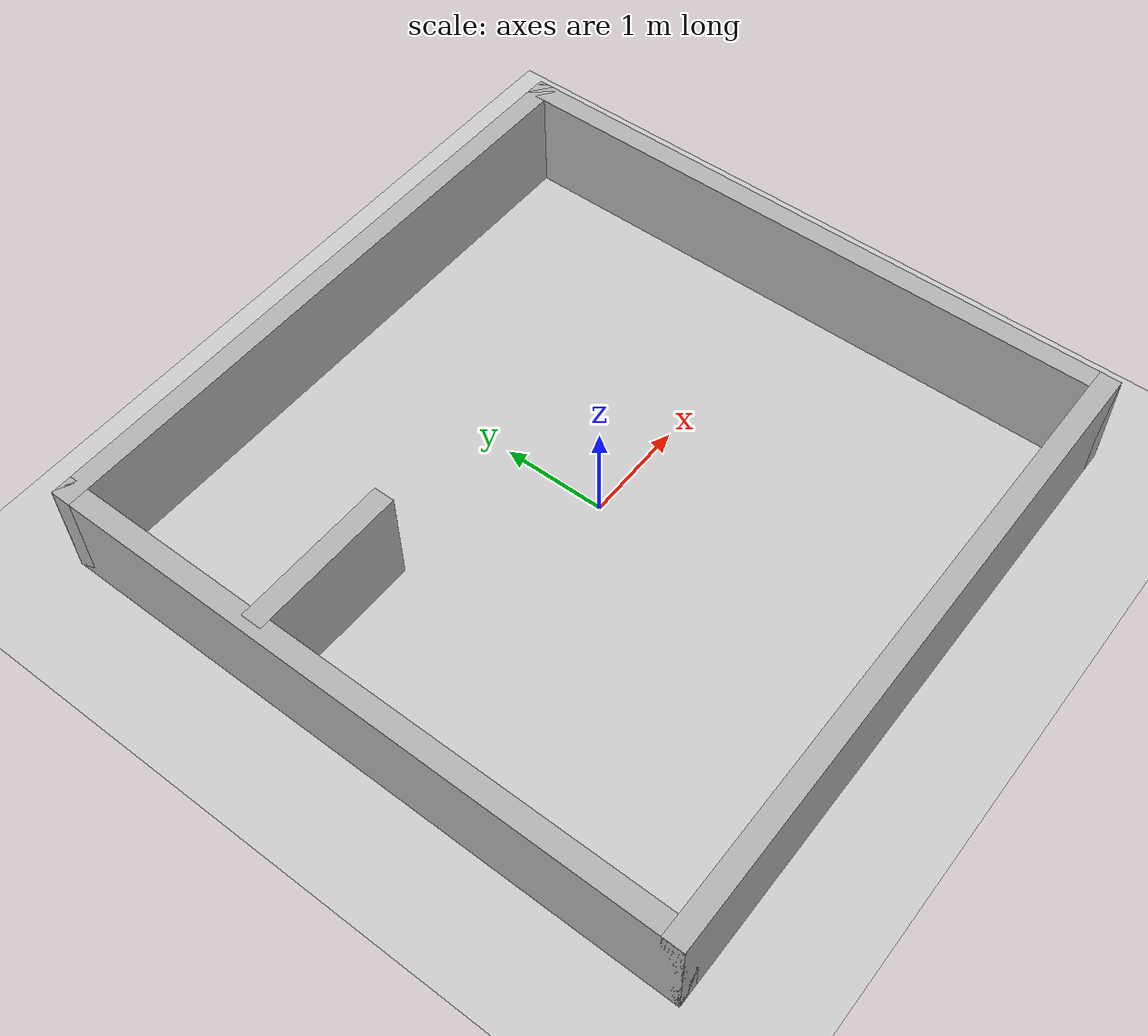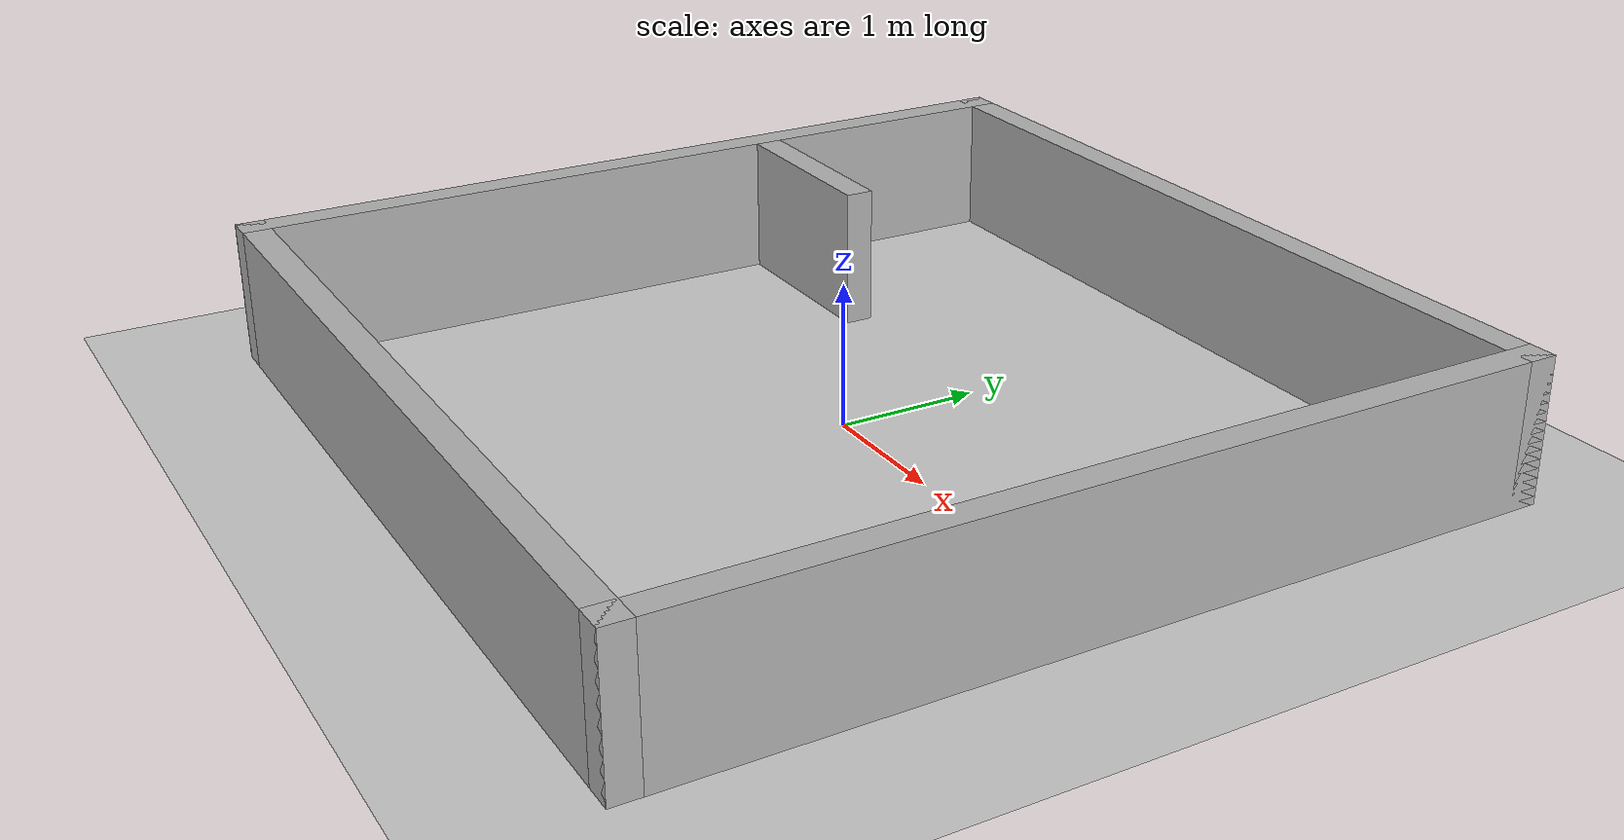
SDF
<?xml version="1.0" ?>
<sdf version="1.6">
  <world name="furbo_world">
    <physics name="1ms" type="ignored">
      <max_step_size>0.001</max_step_size>
      <real_time_factor>1.0</real_time_factor>
    </physics>
    <plugin filename="gz-sim-physics-system" name="gz::sim::systems::Physics"></plugin>
    <plugin filename="gz-sim-user-commands-system" name="gz::sim::systems::UserCommands"></plugin>
    <plugin filename="gz-sim-scene-broadcaster-system" name="gz::sim::systems::SceneBroadcaster"></plugin>
    <plugin filename="gz-sim-contact-system" name="gz::sim::systems::Contact"></plugin>
    <plugin filename="gz-sim-imu-system" name="gz::sim::systems::Imu"></plugin>
    <plugin filename="gz-sim-sensors-system" name="gz::sim::systems::Sensors">
      <render_engine>ogre2</render_engine>
    </plugin>

    <light type="directional" name="sun">
      <cast_shadows>true</cast_shadows>
      <pose>0 0 10 0 0 0</pose>
      <diffuse>0.8 0.8 0.8 1</diffuse>
      <specular>0.2 0.2 0.2 1</specular>
      <attenuation>
        <range>1000</range>
        <constant>0.9</constant>
        <linear>0.01</linear>
        <quadratic>0.001</quadratic>
      </attenuation>
      <direction>-0.5 0.1 -0.9</direction>
    </light>

    <model name="ground_plane">
      <static>true</static>
      <link name="link">
        <collision name="collision">
          <geometry><plane><normal>0 0 1</normal><size>100 100</size></plane></geometry>
        </collision>
        <visual name="visual">
          <geometry><plane><normal>0 0 1</normal><size>100 100</size></plane></geometry>
          <material>
            <ambient>0.8 0.8 0.8 1</ambient>
            <diffuse>0.8 0.8 0.8 1</diffuse>
            <specular>0.8 0.8 0.8 1</specular>
          </material>
        </visual>
      </link>
    </model>

    <model name="wall_north">
      <static>true</static>
      <pose>0 3 0.5 0 0 0</pose>
      <link name="link">
          <visual name="visual">
              <geometry><box><size>6.2 0.2 1</size></box></geometry>
              <material><ambient>0.7 0.7 0.7 1</ambient><diffuse>0.7 0.7 0.7 1</diffuse></material>
          </visual>
          <collision name="collision">
              <geometry><box><size>6.2 0.2 1</size></box></geometry>
          </collision>
      </link>
    </model>

    <model name="wall_south">
        <static>true</static>
        <pose>0 -3 0.5 0 0 0</pose>
        <link name="link">
            <visual name="visual">
                <geometry><box><size>6.2 0.2 1</size></box></geometry>
                <material><ambient>0.7 0.7 0.7 1</ambient><diffuse>0.7 0.7 0.7 1</diffuse></material>
            </visual>
            <collision name="collision">
                <geometry><box><size>6.2 0.2 1</size></box></geometry>
            </collision>
        </link>
    </model>

    <model name="wall_east">
        <static>true</static>
        <pose>3 0 0.5 0 0 0</pose>
        <link name="link">
            <visual name="visual">
                <geometry><box><size>0.2 6.2 1</size></box></geometry>
                <material><ambient>0.7 0.7 0.7 1</ambient><diffuse>0.7 0.7 0.7 1</diffuse></material>
            </visual>
            <collision name="collision">
                <geometry><box><size>0.2 6.2 1</size></box></geometry>
            </collision>
        </link>
    </model>

    <model name="wall_west">
        <static>true</static>
        <pose>-3 0 0.5 0 0 0</pose>
        <link name="link">
            <visual name="visual">
                <geometry><box><size>0.2 6.2 1</size></box></geometry>
                <material><ambient>0.7 0.7 0.7 1</ambient><diffuse>0.7 0.7 0.7 1</diffuse></material>
            </visual>
            <collision name="collision">
                <geometry><box><size>0.2 6.2 1</size></box></geometry>
            </collision>
        </link>
    </model>

    <model name="wall_divider">
        <static>true</static>
        <pose>-2.25 1 0.5 0 0 0</pose>
        <link name="link">
            <visual name="visual">
                <geometry><box><size>1.5 0.2 1</size></box></geometry>
                <material><ambient>0.7 0.7 0.7 1</ambient><diffuse>0.7 0.7 0.7 1</diffuse></material>
            </visual>
            <collision name="collision">
                <geometry><box><size>1.5 0.2 1</size></box></geometry>
            </collision>
        </link>
    </model>
  </world>
</sdf>
